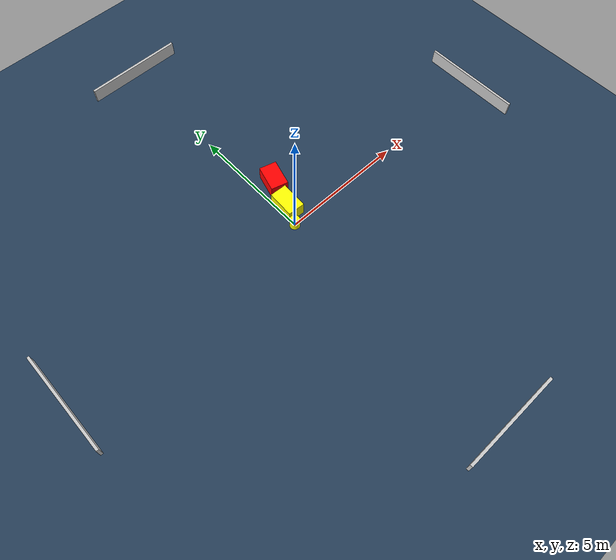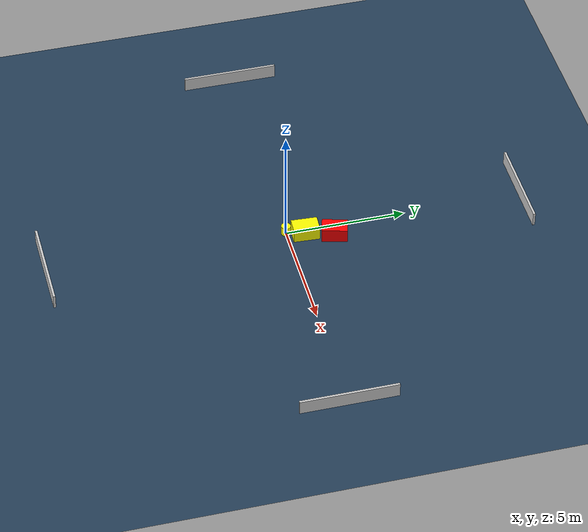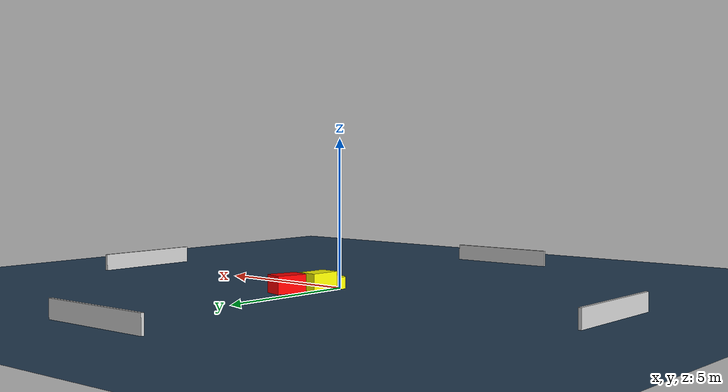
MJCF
<?xml version="1.0" ?>
<mujoco model="generated_environment">
  <option timestep="0.01" integrator="RK4" cone="elliptic"/>
  <default>
    <geom density="1"/>
  </default>
  <asset>
    <texture builtin="gradient" height="3072" name="skybox" rgb1="0.3 0.5 0.7" rgb2="0 0 0" type="skybox" width="512"/>
    <texture builtin="checker" height="300" name="groundplane" rgb1="0.2 0.3 0.4" rgb2="0.1 0.2 0.3" type="2d" width="300"/>
    <material name="groundplane" reflectance="0.2" texrepeat="5 5" texture="groundplane"/>
  </asset>
  <worldbody>
    <light dir="0 0 -1" directional="true" pos="0 0 1.5"/>
    <geom condim="3" friction="0.5 0.005 0.001" material="groundplane" name="floor" pos="0 0 0" size="0 0 0.05" type="plane"/>
    <body name="walls">
      <geom name="wall_1" condim="4" pos="-10.0 0.0 0.3" rgba="0.800000011920929 0.800000011920929 0.800000011920929 1.0" size="0.05 2.0 0.3" type="box"/>
      <geom name="wall_2" condim="4" pos="10.0 0.0 0.3" rgba="0.800000011920929 0.800000011920929 0.800000011920929 1.0" size="0.05 2.0 0.3" type="box"/>
      <geom name="wall_3" condim="4" pos="0.0 -10.0 0.3" rgba="0.800000011920929 0.800000011920929 0.800000011920929 1.0" size="2.0 0.05 0.3" type="box"/>
      <geom name="wall_4" condim="4" pos="0.0 10.0 0.3" rgba="0.800000011920929 0.800000011920929 0.800000011920929 1.0" size="2.0 0.05 0.3" type="box"/>
    </body>
    <body name="robot">
      <joint name="joint_x" type="slide" pos="0 0 0" axis="1 0 0"/>
      <joint name="joint_y" type="slide" pos="0 0 0" axis="0 1 0"/>
      <geom name="robot" type="cylinder" pos="0.0 0.0 0.2" size="0.2 0.2 0.0" mass="5.0" friction="1.0 0.005 0.0001" condim="4" rgba="1.0 1.0 0.0 1.0"/>
    </body>
    <body name="obstacle_1_movable">
      <geom name="obstacle_1_movable" condim="4" pos="0.3018797400355036 0.739848929917482 0.3" euler="0 0 266.8918393069295" friction="0.0 0.005 0.001" rgba="1.0 1.0 0.0 1.0" size="0.5430618555068054 0.3408765038675944 0.3" type="box" mass="0.1"/>
      <joint type="free"/>
    </body>
    <body name="obstacle_2_static">
      <geom name="obstacle_2_static" condim="4" pos="0.6499723296741446 1.8898236716012762 0.3" euler="0 0 74.42508454840596" friction="0.0 0.005 0.001" rgba="1.0 0.0 0.0 1.0" size="0.5305738526600291 0.34463252816808987 0.3" type="box"/>
    </body>
  </worldbody>
  <actuator>
    <motor name="actuator_x" joint="joint_x" gear="1" ctrlrange="-1 1"/>
    <motor name="actuator_y" joint="joint_y" gear="1" ctrlrange="-1 1"/>
  </actuator>
</mujoco>
